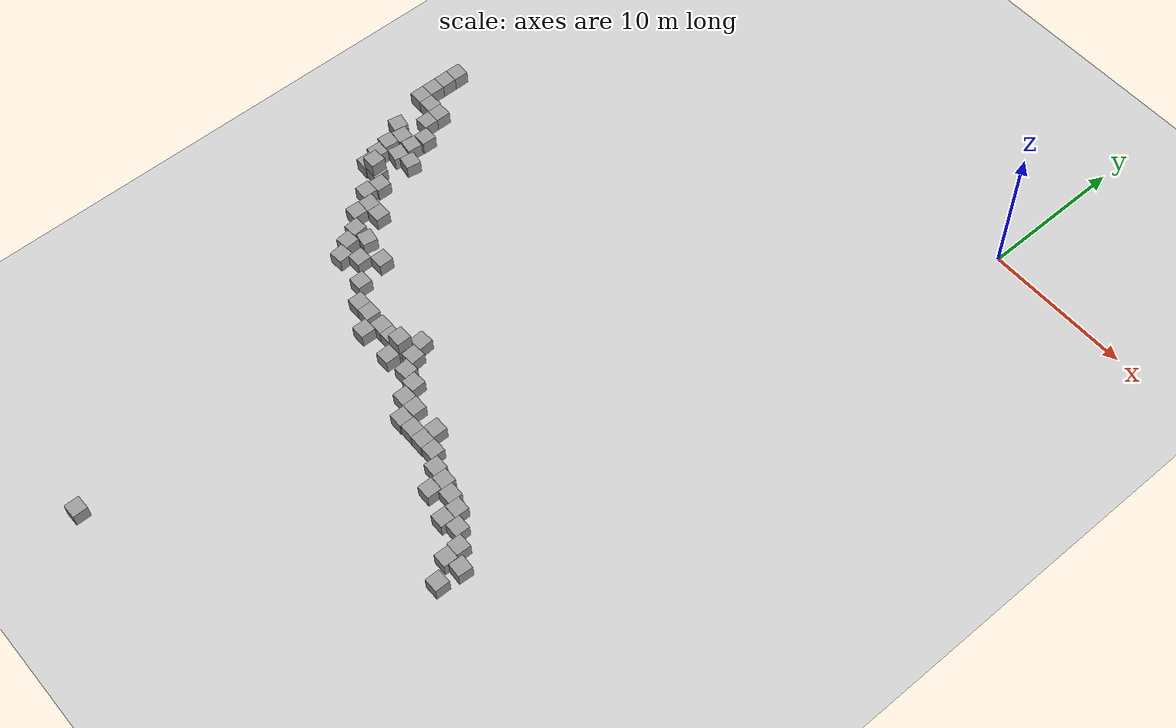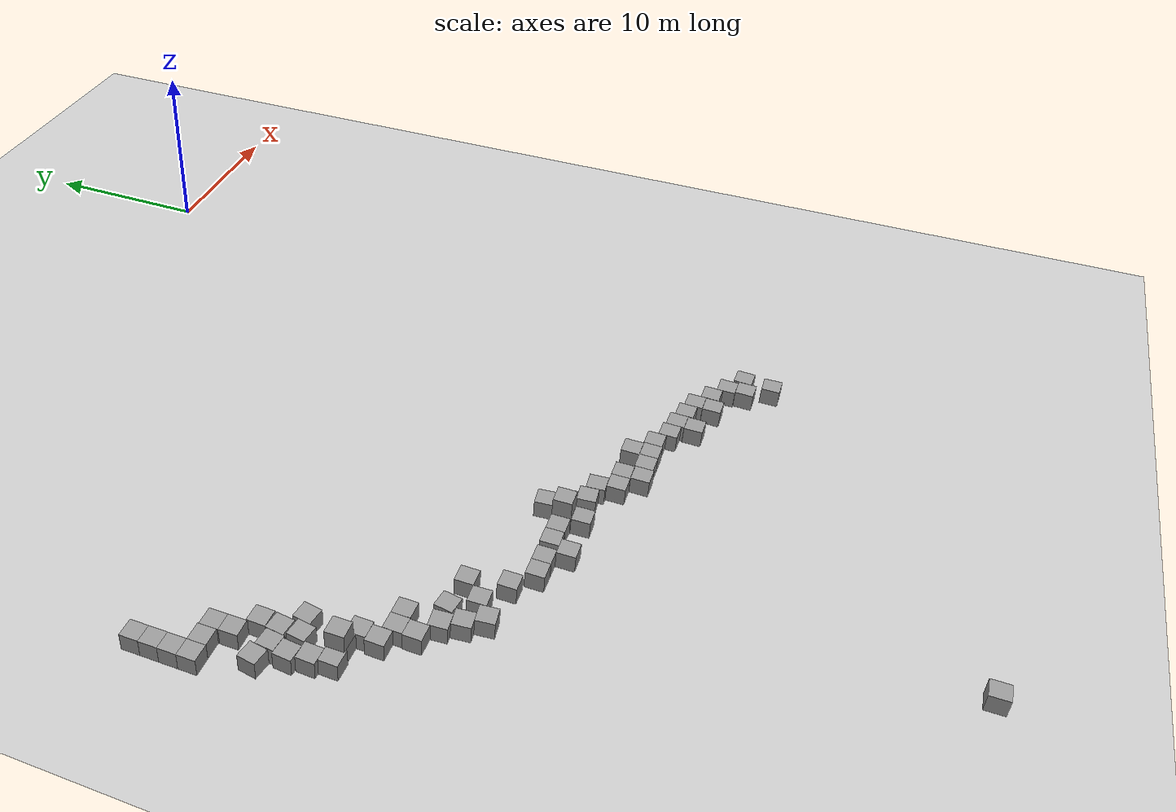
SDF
<sdf version="1.7">
 <world name="default">
  <model name="ground_plane">
   <static>1</static>
   <link name="link">
    <collision name="collision">
     <geometry><plane><normal>0 0 1</normal><size>100 100</size></plane></geometry>
     <surface>
      <contact><collide_bitmask>65535</collide_bitmask></contact>
      <friction><ode><mu>100</mu><mu2>50</mu2></ode></friction>
     </surface>
    </collision>
    <visual name="visual">
     <cast_shadows>0</cast_shadows>
     <geometry><plane><normal>0 0 1</normal><size>100 100</size></plane></geometry>
     <material>
      <script><uri>file://media/materials/scripts/gazebo.material</uri><name>Gazebo/Grey</name></script>
     </material>
    </visual>
   </link>
  </model>
  <model name="unit_box_clone_119">
   <pose>-4.86868 -39.4299 0.5 0 -0 -0.05383</pose>
   <link name="link">
    <inertial>
     <mass>1</mass>
     <inertia>
      <ixx>0.166667</ixx>
      <ixy>0</ixy>
      <ixz>0</ixz>
      <iyy>0.166667</iyy>
      <iyz>0</iyz>
      <izz>0.166667</izz>
     </inertia>
    </inertial>
    <collision name="collision"><geometry><box><size>1 1 1</size></box></geometry></collision>
    <visual name="visual">
     <geometry><box><size>1 1 1</size></box></geometry>
     <material>
      <script><name>Gazebo/Grey</name><uri>file://media/materials/scripts/gazebo.material</uri></script>
     </material>
    </visual>
   </link>
  </model>
  <model name="unit_box_clone_120">
   <pose>-5.89092 -39.6935 0.5 0 -0 -0.019365</pose>
   <link name="link">
    <inertial>
     <mass>1</mass>
     <inertia>
      <ixx>0.166667</ixx>
      <ixy>0</ixy>
      <ixz>0</ixz>
      <iyy>0.166667</iyy>
      <iyz>0</iyz>
      <izz>0.166667</izz>
     </inertia>
    </inertial>
    <collision name="collision"><geometry><box><size>1 1 1</size></box></geometry></collision>
    <visual name="visual">
     <geometry><box><size>1 1 1</size></box></geometry>
     <material>
      <script><name>Gazebo/Grey</name><uri>file://media/materials/scripts/gazebo.material</uri></script>
     </material>
    </visual>
   </link>
  </model>
  <model name="unit_box_clone_121">
   <pose>-5 -41 0.5 0 -0 0</pose>
   <link name="link">
    <inertial>
     <mass>1</mass>
     <inertia>
      <ixx>0.166667</ixx>
      <ixy>0</ixy>
      <ixz>0</ixz>
      <iyy>0.166667</iyy>
      <iyz>0</iyz>
      <izz>0.166667</izz>
     </inertia>
    </inertial>
    <collision name="collision"><geometry><box><size>1 1 1</size></box></geometry></collision>
    <visual name="visual">
     <geometry><box><size>1 1 1</size></box></geometry>
     <material>
      <script><name>Gazebo/Grey</name><uri>file://media/materials/scripts/gazebo.material</uri></script>
     </material>
    </visual>
   </link>
  </model>
  <model name="unit_box_clone_123">
   <pose>-7.965 -37.2759 0.5 0 0 -0.024479</pose>
   <link name="link">
    <inertial>
     <mass>1</mass>
     <inertia>
      <ixx>0.166667</ixx>
      <ixy>0</ixy>
      <ixz>0</ixz>
      <iyy>0.166667</iyy>
      <iyz>0</iyz>
      <izz>0.166667</izz>
     </inertia>
    </inertial>
    <collision name="collision"><geometry><box><size>1 1 1</size></box></geometry></collision>
    <visual name="visual">
     <geometry><box><size>1 1 1</size></box></geometry>
     <material>
      <script><name>Gazebo/Grey</name><uri>file://media/materials/scripts/gazebo.material</uri></script>
     </material>
    </visual>
   </link>
  </model>
  <model name="unit_box_clone_124">
   <pose>-8.00655 -38.2831 0.5 0 0 -0.008542</pose>
   <link name="link">
    <inertial>
     <mass>1</mass>
     <inertia>
      <ixx>0.166667</ixx>
      <ixy>0</ixy>
      <ixz>0</ixz>
      <iyy>0.166667</iyy>
      <iyz>0</iyz>
      <izz>0.166667</izz>
     </inertia>
    </inertial>
    <collision name="collision"><geometry><box><size>1 1 1</size></box></geometry></collision>
    <visual name="visual">
     <geometry><box><size>1 1 1</size></box></geometry>
     <material>
      <script><name>Gazebo/Grey</name><uri>file://media/materials/scripts/gazebo.material</uri></script>
     </material>
    </visual>
   </link>
  </model>
  <model name="unit_box_clone_125">
   <pose>-6.98116 -37.9964 0.5 0 -0 -0.022258</pose>
   <link name="link">
    <inertial>
     <mass>1</mass>
     <inertia>
      <ixx>0.166667</ixx>
      <ixy>0</ixy>
      <ixz>0</ixz>
      <iyy>0.166667</iyy>
      <iyz>0</iyz>
      <izz>0.166667</izz>
     </inertia>
    </inertial>
    <collision name="collision"><geometry><box><size>1 1 1</size></box></geometry></collision>
    <visual name="visual">
     <geometry><box><size>1 1 1</size></box></geometry>
     <material>
      <script><name>Gazebo/Grey</name><uri>file://media/materials/scripts/gazebo.material</uri></script>
     </material>
    </visual>
   </link>
  </model>
  <model name="unit_box_clone_126">
   <pose>-5.99394 -38.6885 0.5 -0 -0 -0.018343</pose>
   <link name="link">
    <inertial>
     <mass>1</mass>
     <inertia>
      <ixx>0.166667</ixx>
      <ixy>0</ixy>
      <ixz>0</ixz>
      <iyy>0.166667</iyy>
      <iyz>0</iyz>
      <izz>0.166667</izz>
     </inertia>
    </inertial>
    <collision name="collision"><geometry><box><size>1 1 1</size></box></geometry></collision>
    <visual name="visual">
     <geometry><box><size>1 1 1</size></box></geometry>
     <material>
      <script><name>Gazebo/Grey</name><uri>file://media/materials/scripts/gazebo.material</uri></script>
     </material>
    </visual>
   </link>
  </model>
  <model name="unit_box_clone_127">
   <pose>-10.0139 -37.7128 0.5 -0 -0 -0.013843</pose>
   <link name="link">
    <inertial>
     <mass>1</mass>
     <inertia>
      <ixx>0.166667</ixx>
      <ixy>0</ixy>
      <ixz>0</ixz>
      <iyy>0.166667</iyy>
      <iyz>0</iyz>
      <izz>0.166667</izz>
     </inertia>
    </inertial>
    <collision name="collision"><geometry><box><size>1 1 1</size></box></geometry></collision>
    <visual name="visual">
     <geometry><box><size>1 1 1</size></box></geometry>
     <material>
      <script><name>Gazebo/Grey</name><uri>file://media/materials/scripts/gazebo.material</uri></script>
     </material>
    </visual>
   </link>
  </model>
  <model name="unit_box_clone_128">
   <pose>-8.95865 -36.9918 0.5 0 0 -0.024317</pose>
   <link name="link">
    <inertial>
     <mass>1</mass>
     <inertia>
      <ixx>0.166667</ixx>
      <ixy>0</ixy>
      <ixz>0</ixz>
      <iyy>0.166667</iyy>
      <iyz>0</iyz>
      <izz>0.166667</izz>
     </inertia>
    </inertial>
    <collision name="collision"><geometry><box><size>1 1 1</size></box></geometry></collision>
    <visual name="visual">
     <geometry><box><size>1 1 1</size></box></geometry>
     <material>
      <script><name>Gazebo/Grey</name><uri>file://media/materials/scripts/gazebo.material</uri></script>
     </material>
    </visual>
   </link>
  </model>
  <model name="unit_box_clone_129">
   <pose>-9.9527 -36.7075 0.5 -0 -0 -0.022991</pose>
   <link name="link">
    <inertial>
     <mass>1</mass>
     <inertia>
      <ixx>0.166667</ixx>
      <ixy>0</ixy>
      <ixz>0</ixz>
      <iyy>0.166667</iyy>
      <iyz>0</iyz>
      <izz>0.166667</izz>
     </inertia>
    </inertial>
    <collision name="collision"><geometry><box><size>1 1 1</size></box></geometry></collision>
    <visual name="visual">
     <geometry><box><size>1 1 1</size></box></geometry>
     <material>
      <script><name>Gazebo/Grey</name><uri>file://media/materials/scripts/gazebo.material</uri></script>
     </material>
    </visual>
   </link>
  </model>
  <model name="unit_box_clone_130">
   <pose>-10.9492 -36.5422 0.5 -0 -0 -0.022879</pose>
   <link name="link">
    <inertial>
     <mass>1</mass>
     <inertia>
      <ixx>0.166667</ixx>
      <ixy>0</ixy>
      <ixz>0</ixz>
      <iyy>0.166667</iyy>
      <iyz>0</iyz>
      <izz>0.166667</izz>
     </inertia>
    </inertial>
    <collision name="collision"><geometry><box><size>1 1 1</size></box></geometry></collision>
    <visual name="visual">
     <geometry><box><size>1 1 1</size></box></geometry>
     <material>
      <script><name>Gazebo/Grey</name><uri>file://media/materials/scripts/gazebo.material</uri></script>
     </material>
    </visual>
   </link>
  </model>
  <model name="unit_box_clone_131">
   <pose>-11.9427 -35.9669 0.5 0 0 -0.009964</pose>
   <link name="link">
    <inertial>
     <mass>1</mass>
     <inertia>
      <ixx>0.166667</ixx>
      <ixy>0</ixy>
      <ixz>0</ixz>
      <iyy>0.166667</iyy>
      <iyz>0</iyz>
      <izz>0.166667</izz>
     </inertia>
    </inertial>
    <collision name="collision"><geometry><box><size>1 1 1</size></box></geometry></collision>
    <visual name="visual">
     <geometry><box><size>1 1 1</size></box></geometry>
     <material>
      <script><name>Gazebo/Grey</name><uri>file://media/materials/scripts/gazebo.material</uri></script>
     </material>
    </visual>
   </link>
  </model>
  <model name="unit_box_clone_132">
   <pose>-13.9431 -35.9759 0.5 -0 -0 -0.010134</pose>
   <link name="link">
    <inertial>
     <mass>1</mass>
     <inertia>
      <ixx>0.166667</ixx>
      <ixy>0</ixy>
      <ixz>0</ixz>
      <iyy>0.166667</iyy>
      <iyz>0</iyz>
      <izz>0.166667</izz>
     </inertia>
    </inertial>
    <collision name="collision"><geometry><box><size>1 1 1</size></box></geometry></collision>
    <visual name="visual">
     <geometry><box><size>1 1 1</size></box></geometry>
     <material>
      <script><name>Gazebo/Grey</name><uri>file://media/materials/scripts/gazebo.material</uri></script>
     </material>
    </visual>
   </link>
  </model>
  <model name="unit_box_clone_133">
   <pose>-14.9441 -36.0212 0.5 0 0 -0.009759</pose>
   <link name="link">
    <inertial>
     <mass>1</mass>
     <inertia>
      <ixx>0.166667</ixx>
      <ixy>0</ixy>
      <ixz>0</ixz>
      <iyy>0.166667</iyy>
      <iyz>0</iyz>
      <izz>0.166667</izz>
     </inertia>
    </inertial>
    <collision name="collision"><geometry><box><size>1 1 1</size></box></geometry></collision>
    <visual name="visual">
     <geometry><box><size>1 1 1</size></box></geometry>
     <material>
      <script><name>Gazebo/Grey</name><uri>file://media/materials/scripts/gazebo.material</uri></script>
     </material>
    </visual>
   </link>
  </model>
  <model name="unit_box_clone_134">
   <pose>-13.006 -34.9786 0.5 0 0 -0.007776</pose>
   <link name="link">
    <inertial>
     <mass>1</mass>
     <inertia>
      <ixx>0.166667</ixx>
      <ixy>0</ixy>
      <ixz>0</ixz>
      <iyy>0.166667</iyy>
      <iyz>0</iyz>
      <izz>0.166667</izz>
     </inertia>
    </inertial>
    <collision name="collision"><geometry><box><size>1 1 1</size></box></geometry></collision>
    <visual name="visual">
     <geometry><box><size>1 1 1</size></box></geometry>
     <material>
      <script><name>Gazebo/Grey</name><uri>file://media/materials/scripts/gazebo.material</uri></script>
     </material>
    </visual>
   </link>
  </model>
  <model name="unit_box_clone_135">
   <pose>-12.9431 -35.9886 0.5 0 0 -0.009912</pose>
   <link name="link">
    <inertial>
     <mass>1</mass>
     <inertia>
      <ixx>0.166667</ixx>
      <ixy>0</ixy>
      <ixz>0</ixz>
      <iyy>0.166667</iyy>
      <iyz>0</iyz>
      <izz>0.166667</izz>
     </inertia>
    </inertial>
    <collision name="collision"><geometry><box><size>1 1 1</size></box></geometry></collision>
    <visual name="visual">
     <geometry><box><size>1 1 1</size></box></geometry>
     <material>
      <script><name>Gazebo/Grey</name><uri>file://media/materials/scripts/gazebo.material</uri></script>
     </material>
    </visual>
   </link>
  </model>
  <model name="unit_box_clone_136">
   <pose>-14.996 -35.0006 0.5 0 -0 0.001906</pose>
   <link name="link">
    <inertial>
     <mass>1</mass>
     <inertia>
      <ixx>0.166667</ixx>
      <ixy>0</ixy>
      <ixz>0</ixz>
      <iyy>0.166667</iyy>
      <iyz>0</iyz>
      <izz>0.166667</izz>
     </inertia>
    </inertial>
    <collision name="collision"><geometry><box><size>1 1 1</size></box></geometry></collision>
    <visual name="visual">
     <geometry><box><size>1 1 1</size></box></geometry>
     <material>
      <script><name>Gazebo/Grey</name><uri>file://media/materials/scripts/gazebo.material</uri></script>
     </material>
    </visual>
   </link>
  </model>
  <model name="unit_box_clone_137">
   <pose>-15.9965 -35.0175 0.5 0 -0 0.003052</pose>
   <link name="link">
    <inertial>
     <mass>1</mass>
     <inertia>
      <ixx>0.166667</ixx>
      <ixy>0</ixy>
      <ixz>0</ixz>
      <iyy>0.166667</iyy>
      <iyz>0</iyz>
      <izz>0.166667</izz>
     </inertia>
    </inertial>
    <collision name="collision"><geometry><box><size>1 1 1</size></box></geometry></collision>
    <visual name="visual">
     <geometry><box><size>1 1 1</size></box></geometry>
     <material>
      <script><name>Gazebo/Grey</name><uri>file://media/materials/scripts/gazebo.material</uri></script>
     </material>
    </visual>
   </link>
  </model>
  <model name="unit_box_clone_138">
   <pose>-16.4077 -34.0117 0.5 0 -0 0.068026</pose>
   <link name="link">
    <inertial>
     <mass>1</mass>
     <inertia>
      <ixx>0.166667</ixx>
      <ixy>0</ixy>
      <ixz>0</ixz>
      <iyy>0.166667</iyy>
      <iyz>0</iyz>
      <izz>0.166667</izz>
     </inertia>
    </inertial>
    <collision name="collision"><geometry><box><size>1 1 1</size></box></geometry></collision>
    <visual name="visual">
     <geometry><box><size>1 1 1</size></box></geometry>
     <material>
      <script><name>Gazebo/Grey</name><uri>file://media/materials/scripts/gazebo.material</uri></script>
     </material>
    </visual>
   </link>
  </model>
  <model name="unit_box_clone_139">
   <pose>-17.435 -33.8017 0.499995 0 1e-05 0.086948</pose>
   <link name="link">
    <inertial>
     <mass>1</mass>
     <inertia>
      <ixx>0.166667</ixx>
      <ixy>0</ixy>
      <ixz>0</ixz>
      <iyy>0.166667</iyy>
      <iyz>0</iyz>
      <izz>0.166667</izz>
     </inertia>
    </inertial>
    <collision name="collision"><geometry><box><size>1 1 1</size></box></geometry></collision>
    <visual name="visual">
     <geometry><box><size>1 1 1</size></box></geometry>
     <material>
      <script><name>Gazebo/Grey</name><uri>file://media/materials/scripts/gazebo.material</uri></script>
     </material>
    </visual>
   </link>
  </model>
  <model name="unit_box_clone_140">
   <pose>-17.9901 -32.8403 0.499971 0 -0 0.074857</pose>
   <link name="link">
    <inertial>
     <mass>1</mass>
     <inertia>
      <ixx>0.166667</ixx>
      <ixy>0</ixy>
      <ixz>0</ixz>
      <iyy>0.166667</iyy>
      <iyz>0</iyz>
      <izz>0.166667</izz>
     </inertia>
    </inertial>
    <collision name="collision"><geometry><box><size>1 1 1</size></box></geometry></collision>
    <visual name="visual">
     <geometry><box><size>1 1 1</size></box></geometry>
     <material>
      <script><name>Gazebo/Grey</name><uri>file://media/materials/scripts/gazebo.material</uri></script>
     </material>
    </visual>
   </link>
  </model>
  <model name="unit_box_clone_141">
   <pose>-18.4799 -31.8731 0.499995 -0 -1e-05 0.087213</pose>
   <link name="link">
    <inertial>
     <mass>1</mass>
     <inertia>
      <ixx>0.166667</ixx>
      <ixy>0</ixy>
      <ixz>0</ixz>
      <iyy>0.166667</iyy>
      <iyz>0</iyz>
      <izz>0.166667</izz>
     </inertia>
    </inertial>
    <collision name="collision"><geometry><box><size>1 1 1</size></box></geometry></collision>
    <visual name="visual">
     <geometry><box><size>1 1 1</size></box></geometry>
     <material>
      <script><name>Gazebo/Grey</name><uri>file://media/materials/scripts/gazebo.material</uri></script>
     </material>
    </visual>
   </link>
  </model>
  <model name="unit_box_clone_142">
   <pose>-19.0105 -32.9952 0.500003 5e-06 -2e-06 0.015409</pose>
   <link name="link">
    <inertial>
     <mass>1</mass>
     <inertia>
      <ixx>0.166667</ixx>
      <ixy>0</ixy>
      <ixz>0</ixz>
      <iyy>0.166667</iyy>
      <iyz>0</iyz>
      <izz>0.166667</izz>
     </inertia>
    </inertial>
    <collision name="collision"><geometry><box><size>1 1 1</size></box></geometry></collision>
    <visual name="visual">
     <geometry><box><size>1 1 1</size></box></geometry>
     <material>
      <script><name>Gazebo/Grey</name><uri>file://media/materials/scripts/gazebo.material</uri></script>
     </material>
    </visual>
   </link>
  </model>
  <model name="unit_box_clone_143">
   <pose>-19.009 -32.993 1.5 6e-06 -0 0.01583</pose>
   <link name="link">
    <inertial>
     <mass>1</mass>
     <inertia>
      <ixx>0.166667</ixx>
      <ixy>0</ixy>
      <ixz>0</ixz>
      <iyy>0.166667</iyy>
      <iyz>0</iyz>
      <izz>0.166667</izz>
     </inertia>
    </inertial>
    <collision name="collision"><geometry><box><size>1 1 1</size></box></geometry></collision>
    <visual name="visual">
     <geometry><box><size>1 1 1</size></box></geometry>
     <material>
      <script><name>Gazebo/Grey</name><uri>file://media/materials/scripts/gazebo.material</uri></script>
     </material>
    </visual>
   </link>
  </model>
  <model name="unit_box_clone_144">
   <pose>-19.0001 -34.008 0.5 0 -0 0.023652</pose>
   <link name="link">
    <inertial>
     <mass>1</mass>
     <inertia>
      <ixx>0.166667</ixx>
      <ixy>0</ixy>
      <ixz>0</ixz>
      <iyy>0.166667</iyy>
      <iyz>0</iyz>
      <izz>0.166667</izz>
     </inertia>
    </inertial>
    <collision name="collision"><geometry><box><size>1 1 1</size></box></geometry></collision>
    <visual name="visual">
     <geometry><box><size>1 1 1</size></box></geometry>
     <material>
      <script><name>Gazebo/Grey</name><uri>file://media/materials/scripts/gazebo.material</uri></script>
     </material>
    </visual>
   </link>
  </model>
  <model name="unit_box_clone_145">
   <pose>-21.47 -34.0035 0.5 0 -0 0.004183</pose>
   <link name="link">
    <inertial>
     <mass>1</mass>
     <inertia>
      <ixx>0.166667</ixx>
      <ixy>0</ixy>
      <ixz>0</ixz>
      <iyy>0.166667</iyy>
      <iyz>0</iyz>
      <izz>0.166667</izz>
     </inertia>
    </inertial>
    <collision name="collision"><geometry><box><size>1 1 1</size></box></geometry></collision>
    <visual name="visual">
     <geometry><box><size>1 1 1</size></box></geometry>
     <material>
      <script><name>Gazebo/Grey</name><uri>file://media/materials/scripts/gazebo.material</uri></script>
     </material>
    </visual>
   </link>
  </model>
  <model name="unit_box_clone_146">
   <pose>-20.0113 -32.9982 0.5 0 -0 0.015381</pose>
   <link name="link">
    <inertial>
     <mass>1</mass>
     <inertia>
      <ixx>0.166667</ixx>
      <ixy>0</ixy>
      <ixz>0</ixz>
      <iyy>0.166667</iyy>
      <iyz>0</iyz>
      <izz>0.166667</izz>
     </inertia>
    </inertial>
    <collision name="collision"><geometry><box><size>1 1 1</size></box></geometry></collision>
    <visual name="visual">
     <geometry><box><size>1 1 1</size></box></geometry>
     <material>
      <script><name>Gazebo/Grey</name><uri>file://media/materials/scripts/gazebo.material</uri></script>
     </material>
    </visual>
   </link>
  </model>
  <model name="unit_box_clone_147">
   <pose>-22.2918 -33 0.5 0 -0 -6e-06</pose>
   <link name="link">
    <inertial>
     <mass>1</mass>
     <inertia>
      <ixx>0.166667</ixx>
      <ixy>0</ixy>
      <ixz>0</ixz>
      <iyy>0.166667</iyy>
      <iyz>0</iyz>
      <izz>0.166667</izz>
     </inertia>
    </inertial>
    <collision name="collision"><geometry><box><size>1 1 1</size></box></geometry></collision>
    <visual name="visual">
     <geometry><box><size>1 1 1</size></box></geometry>
     <material>
      <script><name>Gazebo/Grey</name><uri>file://media/materials/scripts/gazebo.material</uri></script>
     </material>
    </visual>
   </link>
  </model>
  <model name="unit_box_clone_148">
   <pose>-21.0114 -32.996 0.5 0 -0 0.015379</pose>
   <link name="link">
    <inertial>
     <mass>1</mass>
     <inertia>
      <ixx>0.166667</ixx>
      <ixy>0</ixy>
      <ixz>0</ixz>
      <iyy>0.166667</iyy>
      <iyz>0</iyz>
      <izz>0.166667</izz>
     </inertia>
    </inertial>
    <collision name="collision"><geometry><box><size>1 1 1</size></box></geometry></collision>
    <visual name="visual">
     <geometry><box><size>1 1 1</size></box></geometry>
     <material>
      <script><name>Gazebo/Grey</name><uri>file://media/materials/scripts/gazebo.material</uri></script>
     </material>
    </visual>
   </link>
  </model>
  <model name="unit_box_clone_149">
   <pose>-23.2918 -33 0.5 0 0 -6e-06</pose>
   <link name="link">
    <inertial>
     <mass>1</mass>
     <inertia>
      <ixx>0.166667</ixx>
      <ixy>0</ixy>
      <ixz>0</ixz>
      <iyy>0.166667</iyy>
      <iyz>0</iyz>
      <izz>0.166667</izz>
     </inertia>
    </inertial>
    <collision name="collision"><geometry><box><size>1 1 1</size></box></geometry></collision>
    <visual name="visual">
     <geometry><box><size>1 1 1</size></box></geometry>
     <material>
      <script><name>Gazebo/Grey</name><uri>file://media/materials/scripts/gazebo.material</uri></script>
     </material>
    </visual>
   </link>
  </model>
  <model name="unit_box_clone_150">
   <pose>-24.4995 -32 0.5 0 -0 0</pose>
   <link name="link">
    <inertial>
     <mass>1</mass>
     <inertia>
      <ixx>0.166667</ixx>
      <ixy>0</ixy>
      <ixz>0</ixz>
      <iyy>0.166667</iyy>
      <iyz>0</iyz>
      <izz>0.166667</izz>
     </inertia>
    </inertial>
    <collision name="collision"><geometry><box><size>1 1 1</size></box></geometry></collision>
    <visual name="visual">
     <geometry><box><size>1 1 1</size></box></geometry>
     <material>
      <script><name>Gazebo/Grey</name><uri>file://media/materials/scripts/gazebo.material</uri></script>
     </material>
    </visual>
   </link>
  </model>
  <model name="unit_box_clone_151">
   <pose>-24.997 -29.9971 0.5 0 -0 8.7e-05</pose>
   <link name="link">
    <inertial>
     <mass>1</mass>
     <inertia>
      <ixx>0.166667</ixx>
      <ixy>0</ixy>
      <ixz>0</ixz>
      <iyy>0.166667</iyy>
      <iyz>0</iyz>
      <izz>0.166667</izz>
     </inertia>
    </inertial>
    <collision name="collision"><geometry><box><size>1 1 1</size></box></geometry></collision>
    <visual name="visual">
     <geometry><box><size>1 1 1</size></box></geometry>
     <material>
      <script><name>Gazebo/Grey</name><uri>file://media/materials/scripts/gazebo.material</uri></script>
     </material>
    </visual>
   </link>
  </model>
  <model name="unit_box_clone_152">
   <pose>-26.901 -29.7385 0.499996 -9e-06 -0 -0.164867</pose>
   <link name="link">
    <inertial>
     <mass>1</mass>
     <inertia>
      <ixx>0.166667</ixx>
      <ixy>0</ixy>
      <ixz>0</ixz>
      <iyy>0.166667</iyy>
      <iyz>0</iyz>
      <izz>0.166667</izz>
     </inertia>
    </inertial>
    <collision name="collision"><geometry><box><size>1 1 1</size></box></geometry></collision>
    <visual name="visual">
     <geometry><box><size>1 1 1</size></box></geometry>
     <material>
      <script><name>Gazebo/Grey</name><uri>file://media/materials/scripts/gazebo.material</uri></script>
     </material>
    </visual>
   </link>
  </model>
  <model name="unit_box_clone_153">
   <pose>-27.568 -30.7733 0.5 0 -0 0.099944</pose>
   <link name="link">
    <inertial>
     <mass>1</mass>
     <inertia>
      <ixx>0.166667</ixx>
      <ixy>0</ixy>
      <ixz>0</ixz>
      <iyy>0.166667</iyy>
      <iyz>0</iyz>
      <izz>0.166667</izz>
     </inertia>
    </inertial>
    <collision name="collision"><geometry><box><size>1 1 1</size></box></geometry></collision>
    <visual name="visual">
     <geometry><box><size>1 1 1</size></box></geometry>
     <material>
      <script><name>Gazebo/Grey</name><uri>file://media/materials/scripts/gazebo.material</uri></script>
     </material>
    </visual>
   </link>
  </model>
  <model name="unit_box_clone_154">
   <pose>-28.0346 -29.8004 0.499995 0 1e-05 0.070428</pose>
   <link name="link">
    <inertial>
     <mass>1</mass>
     <inertia>
      <ixx>0.166667</ixx>
      <ixy>0</ixy>
      <ixz>0</ixz>
      <iyy>0.166667</iyy>
      <iyz>0</iyz>
      <izz>0.166667</izz>
     </inertia>
    </inertial>
    <collision name="collision"><geometry><box><size>1 1 1</size></box></geometry></collision>
    <visual name="visual">
     <geometry><box><size>1 1 1</size></box></geometry>
     <material>
      <script><name>Gazebo/Grey</name><uri>file://media/materials/scripts/gazebo.material</uri></script>
     </material>
    </visual>
   </link>
  </model>
  <model name="unit_box_clone_155">
   <pose>-26.947 -31.716 0.5 0 -0 0.102025</pose>
   <link name="link">
    <inertial>
     <mass>1</mass>
     <inertia>
      <ixx>0.166667</ixx>
      <ixy>0</ixy>
      <ixz>0</ixz>
      <iyy>0.166667</iyy>
      <iyz>0</iyz>
      <izz>0.166667</izz>
     </inertia>
    </inertial>
    <collision name="collision"><geometry><box><size>1 1 1</size></box></geometry></collision>
    <visual name="visual">
     <geometry><box><size>1 1 1</size></box></geometry>
     <material>
      <script><name>Gazebo/Grey</name><uri>file://media/materials/scripts/gazebo.material</uri></script>
     </material>
    </visual>
   </link>
  </model>
  <model name="unit_box_clone_156">
   <pose>-25.9817 -30.9929 0.5 0 -0 0.031675</pose>
   <link name="link">
    <inertial>
     <mass>1</mass>
     <inertia>
      <ixx>0.166667</ixx>
      <ixy>0</ixy>
      <ixz>0</ixz>
      <iyy>0.166667</iyy>
      <iyz>0</iyz>
      <izz>0.166667</izz>
     </inertia>
    </inertial>
    <collision name="collision"><geometry><box><size>1 1 1</size></box></geometry></collision>
    <visual name="visual">
     <geometry><box><size>1 1 1</size></box></geometry>
     <material>
      <script><name>Gazebo/Grey</name><uri>file://media/materials/scripts/gazebo.material</uri></script>
     </material>
    </visual>
   </link>
  </model>
  <model name="unit_box_clone_157">
   <pose>-27.9966 -27.9998 0.5 0 0 -0.01072</pose>
   <link name="link">
    <inertial>
     <mass>1</mass>
     <inertia>
      <ixx>0.166667</ixx>
      <ixy>0</ixy>
      <ixz>0</ixz>
      <iyy>0.166667</iyy>
      <iyz>0</iyz>
      <izz>0.166667</izz>
     </inertia>
    </inertial>
    <collision name="collision"><geometry><box><size>1 1 1</size></box></geometry></collision>
    <visual name="visual">
     <geometry><box><size>1 1 1</size></box></geometry>
     <material>
      <script><name>Gazebo/Grey</name><uri>file://media/materials/scripts/gazebo.material</uri></script>
     </material>
    </visual>
   </link>
  </model>
  <model name="unit_box_clone_158">
   <pose>-29.0602 -28.9845 0.5 0 -0 -0.024417</pose>
   <link name="link">
    <inertial>
     <mass>1</mass>
     <inertia>
      <ixx>0.166667</ixx>
      <ixy>0</ixy>
      <ixz>0</ixz>
      <iyy>0.166667</iyy>
      <iyz>0</iyz>
      <izz>0.166667</izz>
     </inertia>
    </inertial>
    <collision name="collision"><geometry><box><size>1 1 1</size></box></geometry></collision>
    <visual name="visual">
     <geometry><box><size>1 1 1</size></box></geometry>
     <material>
      <script><name>Gazebo/Grey</name><uri>file://media/materials/scripts/gazebo.material</uri></script>
     </material>
    </visual>
   </link>
  </model>
  <model name="unit_box_clone_159">
   <pose>-29.8434 -26.5154 0.5 0 0 -0.023583</pose>
   <link name="link">
    <inertial>
     <mass>1</mass>
     <inertia>
      <ixx>0.166667</ixx>
      <ixy>0</ixy>
      <ixz>0</ixz>
      <iyy>0.166667</iyy>
      <iyz>0</iyz>
      <izz>0.166667</izz>
     </inertia>
    </inertial>
    <collision name="collision"><geometry><box><size>1 1 1</size></box></geometry></collision>
    <visual name="visual">
     <geometry><box><size>1 1 1</size></box></geometry>
     <material>
      <script><name>Gazebo/Grey</name><uri>file://media/materials/scripts/gazebo.material</uri></script>
     </material>
    </visual>
   </link>
  </model>
  <model name="unit_box_clone_160">
   <pose>-30.8347 -26.0201 0.500003 3e-06 -5e-06 -0.02723</pose>
   <link name="link">
    <inertial>
     <mass>1</mass>
     <inertia>
      <ixx>0.166667</ixx>
      <ixy>0</ixy>
      <ixz>0</ixz>
      <iyy>0.166667</iyy>
      <iyz>0</iyz>
      <izz>0.166667</izz>
     </inertia>
    </inertial>
    <collision name="collision"><geometry><box><size>1 1 1</size></box></geometry></collision>
    <visual name="visual">
     <geometry><box><size>1 1 1</size></box></geometry>
     <material>
      <script><name>Gazebo/Grey</name><uri>file://media/materials/scripts/gazebo.material</uri></script>
     </material>
    </visual>
   </link>
  </model>
  <model name="unit_box_clone_161">
   <pose>-31.0012 -26.0021 1.5 -9e-06 -8e-06 -0.00044</pose>
   <link name="link">
    <inertial>
     <mass>1</mass>
     <inertia>
      <ixx>0.166667</ixx>
      <ixy>0</ixy>
      <ixz>0</ixz>
      <iyy>0.166667</iyy>
      <iyz>0</iyz>
      <izz>0.166667</izz>
     </inertia>
    </inertial>
    <collision name="collision"><geometry><box><size>1 1 1</size></box></geometry></collision>
    <visual name="visual">
     <geometry><box><size>1 1 1</size></box></geometry>
     <material>
      <script><name>Gazebo/Grey</name><uri>file://media/materials/scripts/gazebo.material</uri></script>
     </material>
    </visual>
   </link>
  </model>
  <model name="unit_box_clone_162">
   <pose>-30.0024 -27.5162 0.5 0 -0 -0.015931</pose>
   <link name="link">
    <inertial>
     <mass>1</mass>
     <inertia>
      <ixx>0.166667</ixx>
      <ixy>0</ixy>
      <ixz>0</ixz>
      <iyy>0.166667</iyy>
      <iyz>0</iyz>
      <izz>0.166667</izz>
     </inertia>
    </inertial>
    <collision name="collision"><geometry><box><size>1 1 1</size></box></geometry></collision>
    <visual name="visual">
     <geometry><box><size>1 1 1</size></box></geometry>
     <material>
      <script><name>Gazebo/Grey</name><uri>file://media/materials/scripts/gazebo.material</uri></script>
     </material>
    </visual>
   </link>
  </model>
  <model name="unit_box_clone_163">
   <pose>-29.0005 -27.9828 0.5 -0 -0 -0.018822</pose>
   <link name="link">
    <inertial>
     <mass>1</mass>
     <inertia>
      <ixx>0.166667</ixx>
      <ixy>0</ixy>
      <ixz>0</ixz>
      <iyy>0.166667</iyy>
      <iyz>0</iyz>
      <izz>0.166667</izz>
     </inertia>
    </inertial>
    <collision name="collision"><geometry><box><size>1 1 1</size></box></geometry></collision>
    <visual name="visual">
     <geometry><box><size>1 1 1</size></box></geometry>
     <material>
      <script><name>Gazebo/Grey</name><uri>file://media/materials/scripts/gazebo.material</uri></script>
     </material>
    </visual>
   </link>
  </model>
  <model name="unit_box_clone_164">
   <pose>-31.0799 -24.1148 0.5 0 -0 -0.159904</pose>
   <link name="link">
    <inertial>
     <mass>1</mass>
     <inertia>
      <ixx>0.166667</ixx>
      <ixy>0</ixy>
      <ixz>0</ixz>
      <iyy>0.166667</iyy>
      <iyz>0</iyz>
      <izz>0.166667</izz>
     </inertia>
    </inertial>
    <collision name="collision"><geometry><box><size>1 1 1</size></box></geometry></collision>
    <visual name="visual">
     <geometry><box><size>1 1 1</size></box></geometry>
     <material>
      <script><name>Gazebo/Grey</name><uri>file://media/materials/scripts/gazebo.material</uri></script>
     </material>
    </visual>
   </link>
  </model>
  <model name="unit_box_clone_165">
   <pose>-32.3252 -24.0109 0.5 -0 -0 -0.087169</pose>
   <link name="link">
    <inertial>
     <mass>1</mass>
     <inertia>
      <ixx>0.166667</ixx>
      <ixy>0</ixy>
      <ixz>0</ixz>
      <iyy>0.166667</iyy>
      <iyz>0</iyz>
      <izz>0.166667</izz>
     </inertia>
    </inertial>
    <collision name="collision"><geometry><box><size>1 1 1</size></box></geometry></collision>
    <visual name="visual">
     <geometry><box><size>1 1 1</size></box></geometry>
     <material>
      <script><name>Gazebo/Grey</name><uri>file://media/materials/scripts/gazebo.material</uri></script>
     </material>
    </visual>
   </link>
  </model>
  <model name="unit_box_clone_166">
   <pose>-33.0788 -22.6379 0.5 0 0 -0.170894</pose>
   <link name="link">
    <inertial>
     <mass>1</mass>
     <inertia>
      <ixx>0.166667</ixx>
      <ixy>0</ixy>
      <ixz>0</ixz>
      <iyy>0.166667</iyy>
      <iyz>0</iyz>
      <izz>0.166667</izz>
     </inertia>
    </inertial>
    <collision name="collision"><geometry><box><size>1 1 1</size></box></geometry></collision>
    <visual name="visual">
     <geometry><box><size>1 1 1</size></box></geometry>
     <material>
      <script><name>Gazebo/Grey</name><uri>file://media/materials/scripts/gazebo.material</uri></script>
     </material>
    </visual>
   </link>
  </model>
  <model name="unit_box_clone_167">
   <pose>-30.993 -21.9847 0.5 0 -0 -0.028151</pose>
   <link name="link">
    <inertial>
     <mass>1</mass>
     <inertia>
      <ixx>0.166667</ixx>
      <ixy>0</ixy>
      <ixz>0</ixz>
      <iyy>0.166667</iyy>
      <iyz>0</iyz>
      <izz>0.166667</izz>
     </inertia>
    </inertial>
    <collision name="collision"><geometry><box><size>1 1 1</size></box></geometry></collision>
    <visual name="visual">
     <geometry><box><size>1 1 1</size></box></geometry>
     <material>
      <script><name>Gazebo/Grey</name><uri>file://media/materials/scripts/gazebo.material</uri></script>
     </material>
    </visual>
   </link>
  </model>
  <model name="unit_box_clone_168">
   <pose>-30.0352 -23.9231 0.499997 0 5e-06 -0.157888</pose>
   <link name="link">
    <inertial>
     <mass>1</mass>
     <inertia>
      <ixx>0.166667</ixx>
      <ixy>0</ixy>
      <ixz>0</ixz>
      <iyy>0.166667</iyy>
      <iyz>0</iyz>
      <izz>0.166667</izz>
     </inertia>
    </inertial>
    <collision name="collision"><geometry><box><size>1 1 1</size></box></geometry></collision>
    <visual name="visual">
     <geometry><box><size>1 1 1</size></box></geometry>
     <material>
      <script><name>Gazebo/Grey</name><uri>file://media/materials/scripts/gazebo.material</uri></script>
     </material>
    </visual>
   </link>
  </model>
  <model name="unit_box_clone_169">
   <pose>-32.0999 -25.0444 0.49999 0 -0 -0.036878</pose>
   <link name="link">
    <inertial>
     <mass>1</mass>
     <inertia>
      <ixx>0.166667</ixx>
      <ixy>0</ixy>
      <ixz>0</ixz>
      <iyy>0.166667</iyy>
      <iyz>0</iyz>
      <izz>0.166667</izz>
     </inertia>
    </inertial>
    <collision name="collision"><geometry><box><size>1 1 1</size></box></geometry></collision>
    <visual name="visual">
     <geometry><box><size>1 1 1</size></box></geometry>
     <material>
      <script><name>Gazebo/Grey</name><uri>file://media/materials/scripts/gazebo.material</uri></script>
     </material>
    </visual>
   </link>
  </model>
  <model name="unit_box_clone_170">
   <pose>-31.8368 -26.0564 0.499977 -7e-06 0 -0.028729</pose>
   <link name="link">
    <inertial>
     <mass>1</mass>
     <inertia>
      <ixx>0.166667</ixx>
      <ixy>0</ixy>
      <ixz>0</ixz>
      <iyy>0.166667</iyy>
      <iyz>0</iyz>
      <izz>0.166667</izz>
     </inertia>
    </inertial>
    <collision name="collision"><geometry><box><size>1 1 1</size></box></geometry></collision>
    <visual name="visual">
     <geometry><box><size>1 1 1</size></box></geometry>
     <material>
      <script><name>Gazebo/Grey</name><uri>file://media/materials/scripts/gazebo.material</uri></script>
     </material>
    </visual>
   </link>
  </model>
  <model name="unit_box_clone_171">
   <pose>-32 -20.0533 0.5 0 -0 1.1e-05</pose>
   <link name="link">
    <inertial>
     <mass>1</mass>
     <inertia>
      <ixx>0.166667</ixx>
      <ixy>0</ixy>
      <ixz>0</ixz>
      <iyy>0.166667</iyy>
      <iyz>0</iyz>
      <izz>0.166667</izz>
     </inertia>
    </inertial>
    <collision name="collision"><geometry><box><size>1 1 1</size></box></geometry></collision>
    <visual name="visual">
     <geometry><box><size>1 1 1</size></box></geometry>
     <material>
      <script><name>Gazebo/Grey</name><uri>file://media/materials/scripts/gazebo.material</uri></script>
     </material>
    </visual>
   </link>
  </model>
  <model name="unit_box_clone_172">
   <pose>-32 -21.0533 0.5 0 0 -4e-06</pose>
   <link name="link">
    <inertial>
     <mass>1</mass>
     <inertia>
      <ixx>0.166667</ixx>
      <ixy>0</ixy>
      <ixz>0</ixz>
      <iyy>0.166667</iyy>
      <iyz>0</iyz>
      <izz>0.166667</izz>
     </inertia>
    </inertial>
    <collision name="collision"><geometry><box><size>1 1 1</size></box></geometry></collision>
    <visual name="visual">
     <geometry><box><size>1 1 1</size></box></geometry>
     <material>
      <script><name>Gazebo/Grey</name><uri>file://media/materials/scripts/gazebo.material</uri></script>
     </material>
    </visual>
   </link>
  </model>
  <model name="unit_box_clone_173">
   <pose>-31.0893 -23.0377 0.5 0 -0 -0.120303</pose>
   <link name="link">
    <inertial>
     <mass>1</mass>
     <inertia>
      <ixx>0.166667</ixx>
      <ixy>0</ixy>
      <ixz>0</ixz>
      <iyy>0.166667</iyy>
      <iyz>0</iyz>
      <izz>0.166667</izz>
     </inertia>
    </inertial>
    <collision name="collision"><geometry><box><size>1 1 1</size></box></geometry></collision>
    <visual name="visual">
     <geometry><box><size>1 1 1</size></box></geometry>
     <material>
      <script><name>Gazebo/Grey</name><uri>file://media/materials/scripts/gazebo.material</uri></script>
     </material>
    </visual>
   </link>
  </model>
  <model name="unit_box_clone_174">
   <pose>-32.0991 -23.019 0.499997 6e-06 -0 -0.108429</pose>
   <link name="link">
    <inertial>
     <mass>1</mass>
     <inertia>
      <ixx>0.166667</ixx>
      <ixy>0</ixy>
      <ixz>0</ixz>
      <iyy>0.166667</iyy>
      <iyz>0</iyz>
      <izz>0.166667</izz>
     </inertia>
    </inertial>
    <collision name="collision"><geometry><box><size>1 1 1</size></box></geometry></collision>
    <visual name="visual">
     <geometry><box><size>1 1 1</size></box></geometry>
     <material>
      <script><name>Gazebo/Grey</name><uri>file://media/materials/scripts/gazebo.material</uri></script>
     </material>
    </visual>
   </link>
  </model>
  <model name="unit_box_clone_175">
   <pose>-22.4054 -54 0.5 0 -0 0</pose>
   <link name="link">
    <inertial>
     <mass>1</mass>
     <inertia>
      <ixx>0.166667</ixx>
      <ixy>0</ixy>
      <ixz>0</ixz>
      <iyy>0.166667</iyy>
      <iyz>0</iyz>
      <izz>0.166667</izz>
     </inertia>
    </inertial>
    <collision name="collision"><geometry><box><size>1 1 1</size></box></geometry></collision>
    <visual name="visual">
     <geometry><box><size>1 1 1</size></box></geometry>
     <material>
      <script><name>Gazebo/Grey</name><uri>file://media/materials/scripts/gazebo.material</uri></script>
     </material>
    </visual>
   </link>
  </model>
  <model name="unit_box_clone_176">
   <pose>-34 -20.0002 0.5 0 -0 6.6e-05</pose>
   <link name="link">
    <inertial>
     <mass>1</mass>
     <inertia>
      <ixx>0.166667</ixx>
      <ixy>0</ixy>
      <ixz>0</ixz>
      <iyy>0.166667</iyy>
      <iyz>0</iyz>
      <izz>0.166667</izz>
     </inertia>
    </inertial>
    <collision name="collision"><geometry><box><size>1 1 1</size></box></geometry></collision>
    <visual name="visual">
     <geometry><box><size>1 1 1</size></box></geometry>
     <material>
      <script><name>Gazebo/Grey</name><uri>file://media/materials/scripts/gazebo.material</uri></script>
     </material>
    </visual>
   </link>
  </model>
  <model name="unit_box_clone_177">
   <pose>-33 -20 0.5 0 -0 5.4e-05</pose>
   <link name="link">
    <inertial>
     <mass>1</mass>
     <inertia>
      <ixx>0.166667</ixx>
      <ixy>0</ixy>
      <ixz>0</ixz>
      <iyy>0.166667</iyy>
      <iyz>0</iyz>
      <izz>0.166667</izz>
     </inertia>
    </inertial>
    <collision name="collision"><geometry><box><size>1 1 1</size></box></geometry></collision>
    <visual name="visual">
     <geometry><box><size>1 1 1</size></box></geometry>
     <material>
      <script><name>Gazebo/Grey</name><uri>file://media/materials/scripts/gazebo.material</uri></script>
     </material>
    </visual>
   </link>
  </model>
  <model name="unit_box_clone_178">
   <pose>-33.9998 -17.0001 0.5 0 -0 0.000119</pose>
   <link name="link">
    <inertial>
     <mass>1</mass>
     <inertia>
      <ixx>0.166667</ixx>
      <ixy>0</ixy>
      <ixz>0</ixz>
      <iyy>0.166667</iyy>
      <iyz>0</iyz>
      <izz>0.166667</izz>
     </inertia>
    </inertial>
    <collision name="collision"><geometry><box><size>1 1 1</size></box></geometry></collision>
    <visual name="visual">
     <geometry><box><size>1 1 1</size></box></geometry>
     <material>
      <script><name>Gazebo/Grey</name><uri>file://media/materials/scripts/gazebo.material</uri></script>
     </material>
    </visual>
   </link>
  </model>
  <model name="unit_box_clone_179">
   <pose>-34 -19.0001 0.499995 0 1e-05 0.000133</pose>
   <link name="link">
    <inertial>
     <mass>1</mass>
     <inertia>
      <ixx>0.166667</ixx>
      <ixy>0</ixy>
      <ixz>0</ixz>
      <iyy>0.166667</iyy>
      <iyz>0</iyz>
      <izz>0.166667</izz>
     </inertia>
    </inertial>
    <collision name="collision"><geometry><box><size>1 1 1</size></box></geometry></collision>
    <visual name="visual">
     <geometry><box><size>1 1 1</size></box></geometry>
     <material>
      <script><name>Gazebo/Grey</name><uri>file://media/materials/scripts/gazebo.material</uri></script>
     </material>
    </visual>
   </link>
  </model>
  <model name="unit_box_clone_180">
   <pose>-34 -18.0001 0.499995 0 -1e-05 0.000133</pose>
   <link name="link">
    <inertial>
     <mass>1</mass>
     <inertia>
      <ixx>0.166667</ixx>
      <ixy>0</ixy>
      <ixz>0</ixz>
      <iyy>0.166667</iyy>
      <iyz>0</iyz>
      <izz>0.166667</izz>
     </inertia>
    </inertial>
    <collision name="collision"><geometry><box><size>1 1 1</size></box></geometry></collision>
    <visual name="visual">
     <geometry><box><size>1 1 1</size></box></geometry>
     <material>
      <script><name>Gazebo/Grey</name><uri>file://media/materials/scripts/gazebo.material</uri></script>
     </material>
    </visual>
   </link>
  </model>
 </world>
</sdf>
